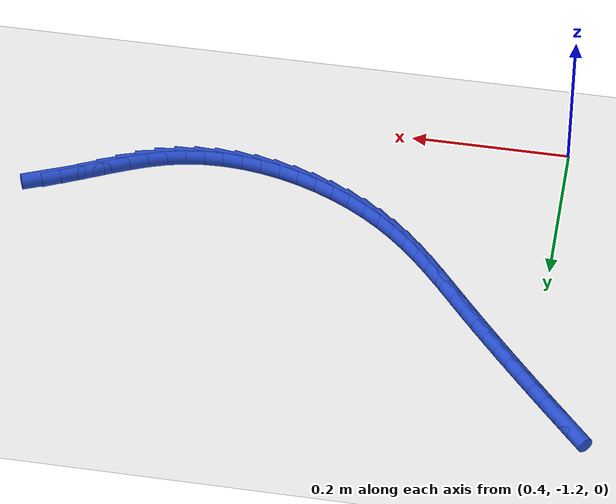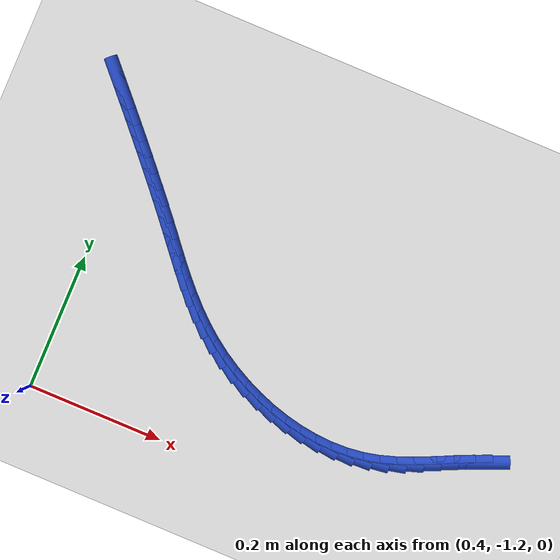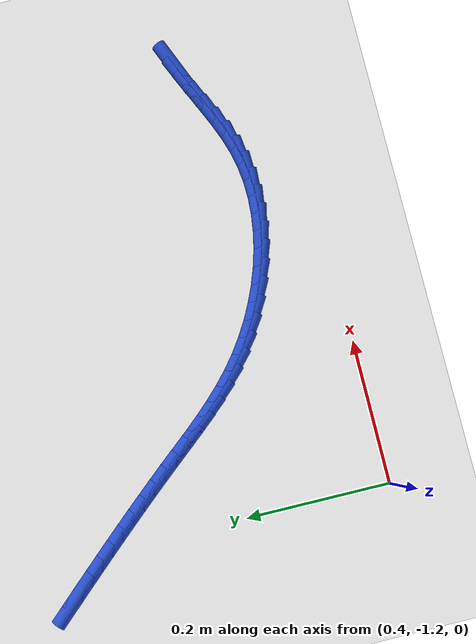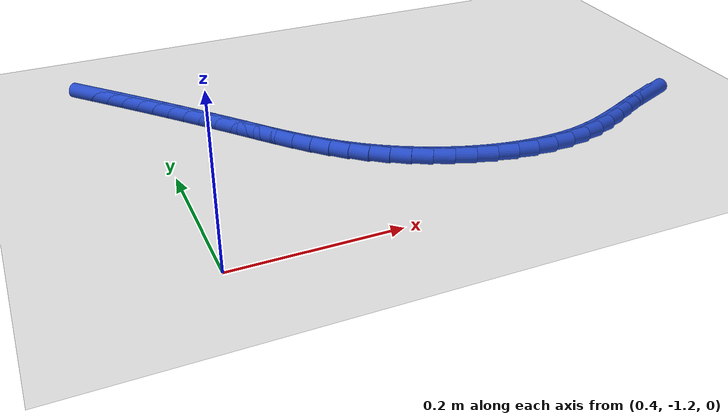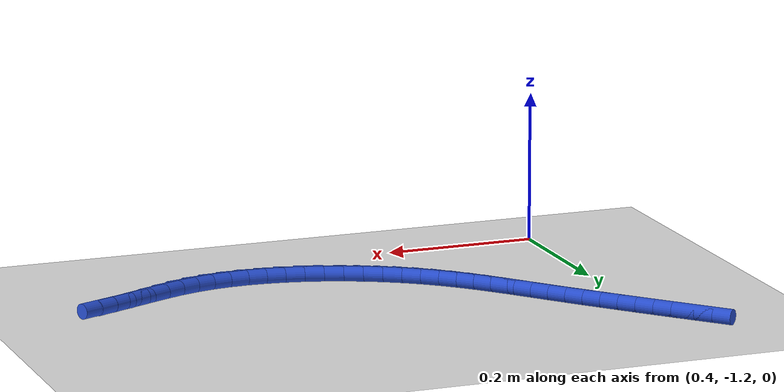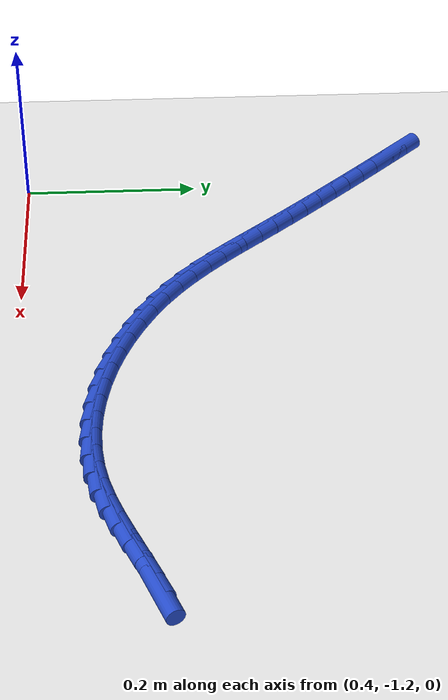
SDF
<sdf version="1.6">
 <world name="default">
  <model name="ground_plane">
   <static>1</static>
   <link name="link">
    <collision name="collision">
     <geometry><plane><normal>0 0 1</normal><size>100 100</size></plane></geometry>
     <surface><friction><ode><mu>100</mu><mu2>50</mu2></ode></friction></surface>
    </collision>
    <visual name="visual">
     <cast_shadows>0</cast_shadows>
     <geometry><plane><normal>0 0 1</normal><size>100 100</size></plane></geometry>
     <material>
      <script><uri>file://media/materials/scripts/gazebo.material</uri><name>Gazebo/WhiteGlow</name></script>
     </material>
    </visual>
   </link>
  </model>
  <model name="line">
   <link name="link_211">
    <pose>1.0348689330603917 -1.0509687540426706 0.01 0 1.57 0.39058316661084647</pose>
    <collision name="collision">
     <geometry><cylinder><radius>0.01</radius><length>0.08</length></cylinder></geometry>
    </collision>
    <visual name="visual">
     <material>
      <script><name>Gazebo/Blue</name><uri>file://media/materials/scripts/gazebo.material</uri></script>
     </material>
     <geometry><cylinder><radius>0.01</radius><length>0.08</length></cylinder></geometry>
    </visual>
   </link>
   <link name="link_212">
    <pose>1.0122199227557473 -1.0602941846316787 0.01 0 1.57 0.42456721061892255</pose>
    <collision name="collision">
     <geometry><cylinder><radius>0.01</radius><length>0.08</length></cylinder></geometry>
    </collision>
    <visual name="visual">
     <material>
      <script><name>Gazebo/Blue</name><uri>file://media/materials/scripts/gazebo.material</uri></script>
     </material>
     <geometry><cylinder><radius>0.01</radius><length>0.08</length></cylinder></geometry>
    </visual>
   </link>
   <link name="link_213">
    <pose>0.9898229664749597 -1.070418993365923 0.01 0 1.57 0.4340295619272716</pose>
    <collision name="collision">
     <geometry><cylinder><radius>0.01</radius><length>0.08</length></cylinder></geometry>
    </collision>
    <visual name="visual">
     <material>
      <script><name>Gazebo/Blue</name><uri>file://media/materials/scripts/gazebo.material</uri></script>
     </material>
     <geometry><cylinder><radius>0.01</radius><length>0.08</length></cylinder></geometry>
    </visual>
   </link>
   <link name="link_214">
    <pose>0.9675109970540833 -1.0807607516720648 0.01 0 1.57 0.41875535290383886</pose>
    <collision name="collision">
     <geometry><cylinder><radius>0.01</radius><length>0.08</length></cylinder></geometry>
    </collision>
    <visual name="visual">
     <material>
      <script><name>Gazebo/Blue</name><uri>file://media/materials/scripts/gazebo.material</uri></script>
     </material>
     <geometry><cylinder><radius>0.01</radius><length>0.08</length></cylinder></geometry>
    </visual>
   </link>
   <link name="link_215">
    <pose>0.9451145361415109 -1.090728979949556 0.01 0 1.57 0.37837498455696184</pose>
    <collision name="collision">
     <geometry><cylinder><radius>0.01</radius><length>0.08</length></cylinder></geometry>
    </collision>
    <visual name="visual">
     <material>
      <script><name>Gazebo/Blue</name><uri>file://media/materials/scripts/gazebo.material</uri></script>
     </material>
     <geometry><cylinder><radius>0.01</radius><length>0.08</length></cylinder></geometry>
    </visual>
   </link>
   <link name="link_216">
    <pose>0.9224641053856356 -1.0997331985978493 0.01 0 1.57 0.31229892792115244</pose>
    <collision name="collision">
     <geometry><cylinder><radius>0.01</radius><length>0.08</length></cylinder></geometry>
    </collision>
    <visual name="visual">
     <material>
      <script><name>Gazebo/Blue</name><uri>file://media/materials/scripts/gazebo.material</uri></script>
     </material>
     <geometry><cylinder><radius>0.01</radius><length>0.08</length></cylinder></geometry>
    </visual>
   </link>
   <link name="link_217">
    <pose>0.8993902264348496 -1.107182928016397 0.01 0 1.57 0.22146408098251577</pose>
    <collision name="collision">
     <geometry><cylinder><radius>0.01</radius><length>0.08</length></cylinder></geometry>
    </collision>
    <visual name="visual">
     <material>
      <script><name>Gazebo/Blue</name><uri>file://media/materials/scripts/gazebo.material</uri></script>
     </material>
     <geometry><cylinder><radius>0.01</radius><length>0.08</length></cylinder></geometry>
    </visual>
   </link>
   <link name="link_218">
    <pose>0.875733867130206 -1.1125093280982066 0.01 0 1.57 0.12318696484118741</pose>
    <collision name="collision">
     <geometry><cylinder><radius>0.01</radius><length>0.08</length></cylinder></geometry>
    </collision>
    <visual name="visual">
     <material>
      <script><name>Gazebo/Blue</name><uri>file://media/materials/scripts/gazebo.material</uri></script>
     </material>
     <geometry><cylinder><radius>0.01</radius><length>0.08</length></cylinder></geometry>
    </visual>
   </link>
   <link name="link_219">
    <pose>0.8515120800984085 -1.1155083218331197 0.01 0 1.57 0.03129523520728696</pose>
    <collision name="collision">
     <geometry><cylinder><radius>0.01</radius><length>0.08</length></cylinder></geometry>
    </collision>
    <visual name="visual">
     <material>
      <script><name>Gazebo/Blue</name><uri>file://media/materials/scripts/gazebo.material</uri></script>
     </material>
     <geometry><cylinder><radius>0.01</radius><length>0.08</length></cylinder></geometry>
    </visual>
   </link>
   <link name="link_220">
    <pose>0.8268883546996254 -1.1162791787845658 0.01 0 1.57 -0.05420705157642742</pose>
    <collision name="collision">
     <geometry><cylinder><radius>0.01</radius><length>0.08</length></cylinder></geometry>
    </collision>
    <visual name="visual">
     <material>
      <script><name>Gazebo/Blue</name><uri>file://media/materials/scripts/gazebo.material</uri></script>
     </material>
     <geometry><cylinder><radius>0.01</radius><length>0.08</length></cylinder></geometry>
    </visual>
   </link>
   <link name="link_221">
    <pose>0.8020306336183546 -1.1149303936649133 0.01 0 1.57 -0.1340004884615733</pose>
    <collision name="collision">
     <geometry><cylinder><radius>0.01</radius><length>0.08</length></cylinder></geometry>
    </collision>
    <visual name="visual">
     <material>
      <script><name>Gazebo/Blue</name><uri>file://media/materials/scripts/gazebo.material</uri></script>
     </material>
     <geometry><cylinder><radius>0.01</radius><length>0.08</length></cylinder></geometry>
    </visual>
   </link>
   <link name="link_222">
    <pose>0.7771068595390921 -1.1115704611865291 0.01 0 1.57 -0.20892027258399373</pose>
    <collision name="collision">
     <geometry><cylinder><radius>0.01</radius><length>0.08</length></cylinder></geometry>
    </collision>
    <visual name="visual">
     <material>
      <script><name>Gazebo/Blue</name><uri>file://media/materials/scripts/gazebo.material</uri></script>
     </material>
     <geometry><cylinder><radius>0.01</radius><length>0.08</length></cylinder></geometry>
    </visual>
   </link>
   <link name="link_223">
    <pose>0.7522849751463362 -1.1063078760617808 0.01 0 1.57 -0.27987563767477536</pose>
    <collision name="collision">
     <geometry><cylinder><radius>0.01</radius><length>0.08</length></cylinder></geometry>
    </collision>
    <visual name="visual">
     <material>
      <script><name>Gazebo/Blue</name><uri>file://media/materials/scripts/gazebo.material</uri></script>
     </material>
     <geometry><cylinder><radius>0.01</radius><length>0.08</length></cylinder></geometry>
    </visual>
   </link>
   <link name="link_224">
    <pose>0.727732923124583 -1.0992511330030355 0.01 0 1.57 -0.34780293939291257</pose>
    <collision name="collision">
     <geometry><cylinder><radius>0.01</radius><length>0.08</length></cylinder></geometry>
    </collision>
    <visual name="visual">
     <material>
      <script><name>Gazebo/Blue</name><uri>file://media/materials/scripts/gazebo.material</uri></script>
     </material>
     <geometry><cylinder><radius>0.01</radius><length>0.08</length></cylinder></geometry>
    </visual>
   </link>
   <link name="link_225">
    <pose>0.7036186461583305 -1.0905087267226612 0.01 0 1.57 -0.41364441547896785</pose>
    <collision name="collision">
     <geometry><cylinder><radius>0.01</radius><length>0.08</length></cylinder></geometry>
    </collision>
    <visual name="visual">
     <material>
      <script><name>Gazebo/Blue</name><uri>file://media/materials/scripts/gazebo.material</uri></script>
     </material>
     <geometry><cylinder><radius>0.01</radius><length>0.08</length></cylinder></geometry>
    </visual>
   </link>
   <link name="link_226">
    <pose>0.6801100869320744 -1.080189151933024 0.01 0 1.57 -0.47834489311180545</pose>
    <collision name="collision">
     <geometry><cylinder><radius>0.01</radius><length>0.08</length></cylinder></geometry>
    </collision>
    <visual name="visual">
     <material>
      <script><name>Gazebo/Blue</name><uri>file://media/materials/scripts/gazebo.material</uri></script>
     </material>
     <geometry><cylinder><radius>0.01</radius><length>0.08</length></cylinder></geometry>
    </visual>
   </link>
   <link name="link_227">
    <pose>0.6573751881303139 -1.068400903346493 0.01 0 1.57 -0.5428603483137594</pose>
    <collision name="collision">
     <geometry><cylinder><radius>0.01</radius><length>0.08</length></cylinder></geometry>
    </collision>
    <visual name="visual">
     <material>
      <script><name>Gazebo/Blue</name><uri>file://media/materials/scripts/gazebo.material</uri></script>
     </material>
     <geometry><cylinder><radius>0.01</radius><length>0.08</length></cylinder></geometry>
    </visual>
   </link>
   <link name="link_228">
    <pose>0.6355818924375448 -1.0552524756754345 0.01 0 1.57 -0.6081738530271839</pose>
    <collision name="collision">
     <geometry><cylinder><radius>0.01</radius><length>0.08</length></cylinder></geometry>
    </collision>
    <visual name="visual">
     <material>
      <script><name>Gazebo/Blue</name><uri>file://media/materials/scripts/gazebo.material</uri></script>
     </material>
     <geometry><cylinder><radius>0.01</radius><length>0.08</length></cylinder></geometry>
    </visual>
   </link>
   <link name="link_229">
    <pose>0.6148981425382647 -1.0408523636322162 0.01 0 1.57 -0.6747063773056937</pose>
    <collision name="collision">
     <geometry><cylinder><radius>0.01</radius><length>0.08</length></cylinder></geometry>
    </collision>
    <visual name="visual">
     <material>
      <script><name>Gazebo/Blue</name><uri>file://media/materials/scripts/gazebo.material</uri></script>
     </material>
     <geometry><cylinder><radius>0.01</radius><length>0.08</length></cylinder></geometry>
    </visual>
   </link>
   <link name="link_230">
    <pose>0.5954723237319618 -1.0253128097377289 0.01 0 1.57 -0.736025609923522</pose>
    <collision name="collision">
     <geometry><cylinder><radius>0.01</radius><length>0.08</length></cylinder></geometry>
    </collision>
    <visual name="visual">
     <material>
      <script><name>Gazebo/Blue</name><uri>file://media/materials/scripts/gazebo.material</uri></script>
     </material>
     <geometry><cylinder><radius>0.01</radius><length>0.08</length></cylinder></geometry>
    </visual>
   </link>
   <link name="link_231">
    <pose>0.5772303205104109 -1.008788694647931 0.01 0 1.57 -0.7869340469220985</pose>
    <collision name="collision">
     <geometry><cylinder><radius>0.01</radius><length>0.08</length></cylinder></geometry>
    </collision>
    <visual name="visual">
     <material>
      <script><name>Gazebo/Blue</name><uri>file://media/materials/scripts/gazebo.material</uri></script>
     </material>
     <geometry><cylinder><radius>0.01</radius><length>0.08</length></cylinder></geometry>
    </visual>
   </link>
   <link name="link_232">
    <pose>0.5599567401120727 -0.9914619721726751 0.01 0 1.57 -0.8266902983494874</pose>
    <collision name="collision">
     <geometry><cylinder><radius>0.01</radius><length>0.08</length></cylinder></geometry>
    </collision>
    <visual name="visual">
     <material>
      <script><name>Gazebo/Blue</name><uri>file://media/materials/scripts/gazebo.material</uri></script>
     </material>
     <geometry><cylinder><radius>0.01</radius><length>0.08</length></cylinder></geometry>
    </visual>
   </link>
   <link name="link_233">
    <pose>0.5434339351424127 -0.9735150281802287 0.01 0 1.57 -0.8549625502571323</pose>
    <collision name="collision">
     <geometry><cylinder><radius>0.01</radius><length>0.08</length></cylinder></geometry>
    </collision>
    <visual name="visual">
     <material>
      <script><name>Gazebo/Blue</name><uri>file://media/materials/scripts/gazebo.material</uri></script>
     </material>
     <geometry><cylinder><radius>0.01</radius><length>0.08</length></cylinder></geometry>
    </visual>
   </link>
   <link name="link_234">
    <pose>0.5274442582068959 -0.9551302485388584 0.01 0 1.57 -0.8716207725231357</pose>
    <collision name="collision">
     <geometry><cylinder><radius>0.01</radius><length>0.08</length></cylinder></geometry>
    </collision>
    <visual name="visual">
     <material>
      <script><name>Gazebo/Blue</name><uri>file://media/materials/scripts/gazebo.material</uri></script>
     </material>
     <geometry><cylinder><radius>0.01</radius><length>0.08</length></cylinder></geometry>
    </visual>
   </link>
   <link name="link_235">
    <pose>0.511770061910989 -0.9364900191168328 0.01 0 1.57 -0.8766275050488505</pose>
    <collision name="collision">
     <geometry><cylinder><radius>0.01</radius><length>0.08</length></cylinder></geometry>
    </collision>
    <visual name="visual">
     <material>
      <script><name>Gazebo/Blue</name><uri>file://media/materials/scripts/gazebo.material</uri></script>
     </material>
     <geometry><cylinder><radius>0.01</radius><length>0.08</length></cylinder></geometry>
    </visual>
   </link>
   <link name="link_236">
    <pose>0.4961936988601568 -0.917776725782418 0.01 0 1.57 -0.8715906940102514</pose>
    <collision name="collision">
     <geometry><cylinder><radius>0.01</radius><length>0.08</length></cylinder></geometry>
    </collision>
    <visual name="visual">
     <material>
      <script><name>Gazebo/Blue</name><uri>file://media/materials/scripts/gazebo.material</uri></script>
     </material>
     <geometry><cylinder><radius>0.01</radius><length>0.08</length></cylinder></geometry>
    </visual>
   </link>
   <link name="link_237">
    <pose>0.48052727641325077 -0.899146878874819 0.01 0 1.57 -0.8645811743706856</pose>
    <collision name="collision">
     <geometry><cylinder><radius>0.01</radius><length>0.08</length></cylinder></geometry>
    </collision>
    <visual name="visual">
     <material>
      <script><name>Gazebo/Blue</name><uri>file://media/materials/scripts/gazebo.material</uri></script>
     </material>
     <geometry><cylinder><radius>0.01</radius><length>0.08</length></cylinder></geometry>
    </visual>
   </link>
   <link name="link_238">
    <pose>0.46473123985190395 -0.8806279901096529 0.01 0 1.57 -0.8581147122962847</pose>
    <collision name="collision">
     <geometry><cylinder><radius>0.01</radius><length>0.08</length></cylinder></geometry>
    </collision>
    <visual name="visual">
     <material>
      <script><name>Gazebo/Blue</name><uri>file://media/materials/scripts/gazebo.material</uri></script>
     </material>
     <geometry><cylinder><radius>0.01</radius><length>0.08</length></cylinder></geometry>
    </visual>
   </link>
   <link name="link_239">
    <pose>0.448812169303519 -0.8622074511072005 0.01 0 1.57 -0.8521964861358882</pose>
    <collision name="collision">
     <geometry><cylinder><radius>0.01</radius><length>0.08</length></cylinder></geometry>
    </collision>
    <visual name="visual">
     <material>
      <script><name>Gazebo/Blue</name><uri>file://media/materials/scripts/gazebo.material</uri></script>
     </material>
     <geometry><cylinder><radius>0.01</radius><length>0.08</length></cylinder></geometry>
    </visual>
   </link>
   <link name="link_240">
    <pose>0.43277665954055033 -0.8438726407520155 0.01 0 1.57 -0.8468299120894206</pose>
    <collision name="collision">
     <geometry><cylinder><radius>0.01</radius><length>0.08</length></cylinder></geometry>
    </collision>
    <visual name="visual">
     <material>
      <script><name>Gazebo/Blue</name><uri>file://media/materials/scripts/gazebo.material</uri></script>
     </material>
     <geometry><cylinder><radius>0.01</radius><length>0.08</length></cylinder></geometry>
    </visual>
   </link>
   <link name="link_241">
    <pose>0.41663130533545223 -0.8256109379286515 0.01 0 1.57 -0.8420174880367572</pose>
    <collision name="collision">
     <geometry><cylinder><radius>0.01</radius><length>0.08</length></cylinder></geometry>
    </collision>
    <visual name="visual">
     <material>
      <script><name>Gazebo/Blue</name><uri>file://media/materials/scripts/gazebo.material</uri></script>
     </material>
     <geometry><cylinder><radius>0.01</radius><length>0.08</length></cylinder></geometry>
    </visual>
   </link>
   <link name="link_242">
    <pose>0.40038270146067906 -0.8074097215216613 0.01 0 1.57 -0.8377608392395447</pose>
    <collision name="collision">
     <geometry><cylinder><radius>0.01</radius><length>0.08</length></cylinder></geometry>
    </collision>
    <visual name="visual">
     <material>
      <script><name>Gazebo/Blue</name><uri>file://media/materials/scripts/gazebo.material</uri></script>
     </material>
     <geometry><cylinder><radius>0.01</radius><length>0.08</length></cylinder></geometry>
    </visual>
   </link>
   <link name="link_243">
    <pose>0.3840374426886844 -0.7892563704155975 0.01 0 1.57 -0.8340607624419614</pose>
    <collision name="collision">
     <geometry><cylinder><radius>0.01</radius><length>0.08</length></cylinder></geometry>
    </collision>
    <visual name="visual">
     <material>
      <script><name>Gazebo/Blue</name><uri>file://media/materials/scripts/gazebo.material</uri></script>
     </material>
     <geometry><cylinder><radius>0.01</radius><length>0.08</length></cylinder></geometry>
    </visual>
   </link>
   <link name="link_244">
    <pose>0.36760212379192375 -0.7711382634950151 0.01 0 1.57 -0.8309172677876872</pose>
    <collision name="collision">
     <geometry><cylinder><radius>0.01</radius><length>0.08</length></cylinder></geometry>
    </collision>
    <visual name="visual">
     <material>
      <script><name>Gazebo/Blue</name><uri>file://media/materials/scripts/gazebo.material</uri></script>
     </material>
     <geometry><cylinder><radius>0.01</radius><length>0.08</length></cylinder></geometry>
    </visual>
   </link>
   <link name="link_245">
    <pose>0.35108333954285104 -0.7530427796444668 0.01 0 1.57 -0.828329618078356</pose>
    <collision name="collision">
     <geometry><cylinder><radius>0.01</radius><length>0.08</length></cylinder></geometry>
    </collision>
    <visual name="visual">
     <material>
      <script><name>Gazebo/Blue</name><uri>file://media/materials/scripts/gazebo.material</uri></script>
     </material>
     <geometry><cylinder><radius>0.01</radius><length>0.08</length></cylinder></geometry>
    </visual>
   </link>
  </model>
 </world>
</sdf>
